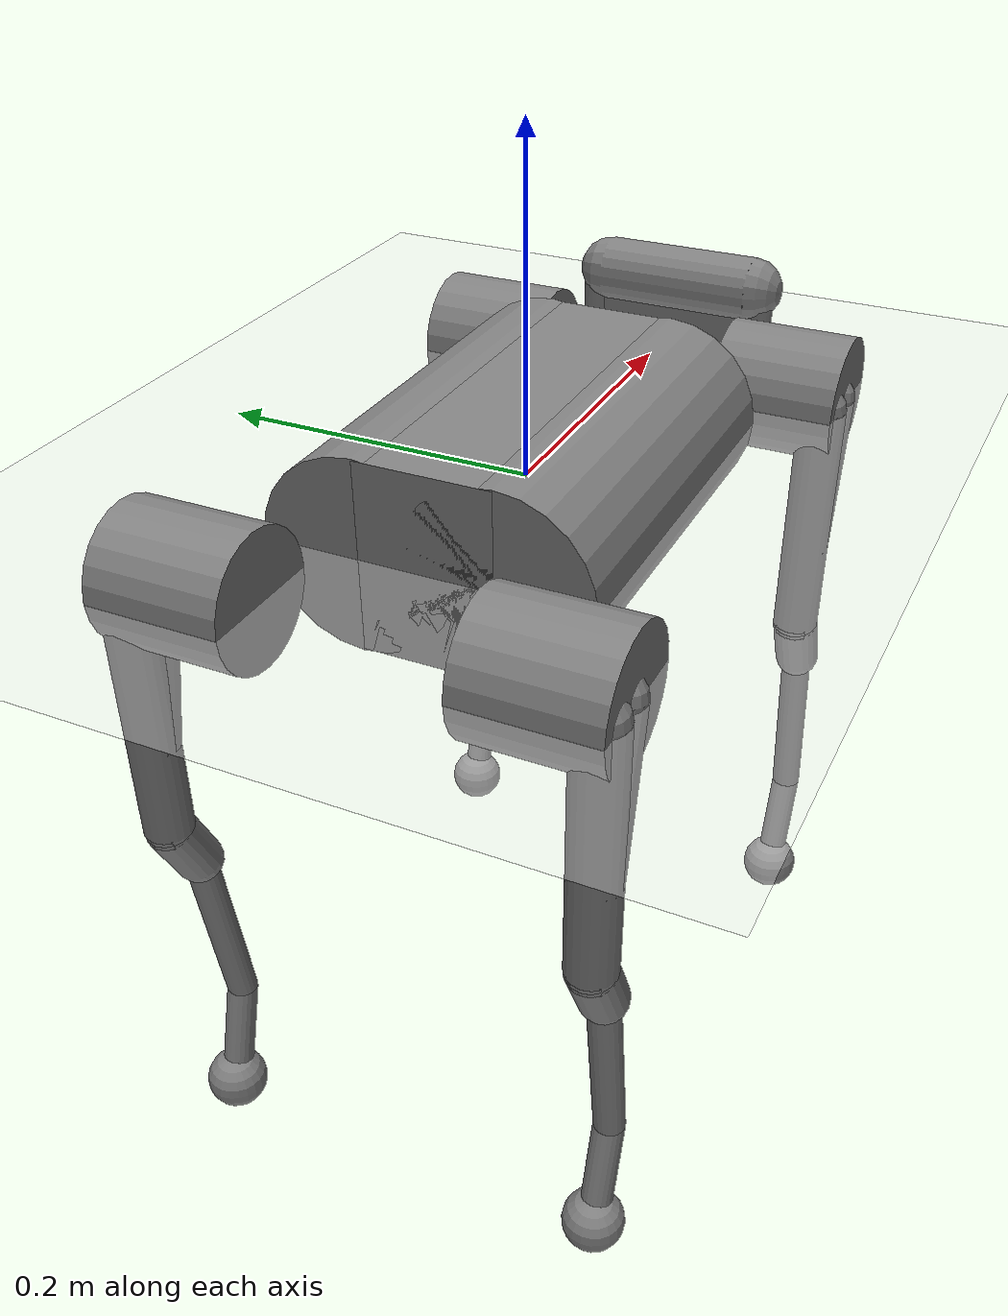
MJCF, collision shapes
<mujoco model="a1">
  <compiler angle="radian" meshdir="assets" texturedir="assets" autolimits="true"/>

  <option cone="pyramidal" impratio="100" timestep="0.005"/>

  <visual>
    <map force="0.1" zfar="30"/>
    <rgba haze="0.15 0.25 0.35 1"/>
    <global offwidth="2560" offheight="1440" elevation="-20" azimuth="120"/>
  </visual>

  <default>
    <geom solref="-1000 -80"/>
    <motor ctrllimited="true" ctrlrange="-33.5 33.5"/>
    <default class="a1">
      <geom friction="1.0" margin="0.001"/>
      <joint axis="0 1 0" armature="0.01" frictionloss="0.2"/>
      <default class="visual">
        <geom type="mesh" contype="0" conaffinity="0" group="2" material="dark"/>
      </default>
      <default class="collision">
        <geom group="3" type="capsule"/>
        <default class="hip_left">
          <geom size="0.04 0.04" quat="1 1 0 0" type="cylinder" pos="0 0.055 0"/>
        </default>
        <default class="hip_right">
          <geom size="0.04 0.04" quat="1 1 0 0" type="cylinder" pos="0 -0.055 0"/>
        </default>
        <default class="thigh1">
          <geom size="0.015" fromto="-0.02 0 0 -0.02 0 -0.16"/>
        </default>
        <default class="thigh2">
          <geom size="0.015" fromto="0 0 0 -0.02 0 -0.1"/>
        </default>
        <default class="thigh3">
          <geom size="0.015" fromto="-0.02 0 -0.16 0 0 -0.2"/>
        </default>
        <default class="calf1">
          <geom size="0.01" fromto="0 0 0 0.02 0 -0.13"/>
        </default>
        <default class="calf2">
          <geom size="0.01" fromto="0.02 0 -0.13 0 0 -0.2"/>
        </default>
        <default class="foot">
          <geom type="sphere" size="0.02" pos="0 0 -0.2" priority="1" solimp="0.015 1 0.031"
              condim="6" friction="1.0 0.02 0.01"/>
        </default>
      </default>
    </default>
  </default>

  <asset>
    <texture type="skybox" builtin="gradient" rgb1=".3 .5 .7" rgb2="0 0 0" width="32" height="512"/>

    <material name="dark" specular="0" shininess="0.25" rgba="0.2 0.2 0.2 1"/>
    <texture type="2d" name="trunk_A1" file="trunk_A1.png"/>
    <material name="carbonfibre" texture="trunk_A1" specular="0" shininess="0.25"/>

    <texture name="grid" type="2d" builtin="checker" rgb1="0.5 0.6 0.7" rgb2="0.2 0.3 0.4" width="512" height="512"/>
    <material name="grid" reflectance="0.5" texture="grid" texrepeat="1 1" texuniform="true"></material>

    <mesh class="a1" file="calf.obj"/>
    <mesh class="a1" file="hip.obj"/>
    <mesh class="a1" file="thigh.obj"/>
    <mesh class="a1" file="thigh_mirror.obj"/>
    <mesh class="a1" file="trunk.obj"/>
  </asset>

  <worldbody>
    <geom name="floor" size="0 0 .125" type="plane" material="grid" condim="3" rgba="0.9 0.9 0.9 1"/>

    <light cutoff="100" diffuse="1 1 1" dir="-0 0 -1.3" directional="true" exponent="1" pos="0 0 1.3" specular=".1 .1 .1" castshadow="false"/>
    <light name="spotlight" mode="targetbodycom" target="trunk" pos="0 0 15"/>
    <body name="trunk" pos="0 0 0" childclass="a1">
      <camera name="track" mode="trackcom" pos="0 -2 0" xyaxes="1 0 0 0 0 1"/>
      <freejoint/>

      <inertial mass="4.713" pos="0 0.0041 -0.0005"
          fullinertia="0.0158533 0.0377999 0.0456542 -3.66e-05 -6.11e-05 -2.75e-05"/>

      <geom class="visual" mesh="trunk" material="carbonfibre"/>
      <geom name="trunk_1" class="collision" size="0.125 0.04 0.057" type="box"/>
      <geom name="trunk_2" class="collision" quat="1 0 1 0" pos="0 -0.04 0" size="0.058 0.125" type="cylinder"/>
      <geom name="trunk_3" class="collision" quat="1 0 1 0" pos="0 +0.04 0" size="0.058 0.125" type="cylinder"/>
      <geom name="trunk_4" class="collision" pos="0.25 0 0" size="0.005 0.06 0.05" type="box"/>
      <geom name="trunk_5" class="collision" pos="0.25 0.06 -0.01" size="0.009 0.035"/>
      <geom name="trunk_6" class="collision" pos="0.25 -0.06 -0.01" size="0.009 0.035"/>
      <geom name="trunk_7" class="collision" pos="0.25 0 -0.05" size="0.005 0.06" quat="1 1 0 0"/>
      <geom name="trunk_8" class="collision" pos="0.255 0 0.0355" size="0.021 0.052" quat="1 1 0 0"/>
      <body name="FR_hip" pos="0.183 -0.047 0">
        <inertial mass="0.696" pos="-0.003311 -0.000635 3.1e-05"
            quat="0.507528 0.506268 0.491507 0.494499"
            diaginertia="0.000807752 0.00055293 0.000468983"/>
        <joint name="FR_hip_joint" axis="1 0 0" range="-0.802851 0.802851"/>
        <geom class="visual" mesh="hip" quat="0 1 0 0"/>
        <geom class="hip_right" name="FR_hip"/>
        <body name="FR_thigh" pos="0 -0.08505 0">
          <inertial mass="1.013" pos="-0.003237 0.022327 -0.027326"
              quat="0.999125 -0.00256393 -0.0409531 -0.00806091"
              diaginertia="0.00555739 0.00513936 0.00133944"/>
          <joint name="FR_thigh_joint" axis="0 -1 0" range="-4.18879 1.0472"/>
          <geom class="visual" mesh="thigh_mirror"/>
          <geom class="thigh1" name="FR_thigh1"/>
          <geom class="thigh2" name="FR_thigh2"/>
          <geom class="thigh3" name="FR_thigh3"/>
          <body name="FR_calf" pos="0 0 -0.2">
            <inertial mass="0.226" pos="0.00472659 0 -0.131975"
                quat="0.706886 0.017653 0.017653 0.706886"
                diaginertia="0.00340344 0.00339393 3.54834e-05"/>
            <joint name="FR_calf_joint" axis="0 -1 0" range="0.916298 2.69653"/>
            <geom class="visual" mesh="calf"/>
            <geom class="calf1" name="FR_calf1"/>
            <geom class="calf2" name="FR_calf2"/>
            <geom class="foot" name="FR_foot"/>
          </body>
        </body>
      </body>
      <body name="FL_hip" pos="0.183 0.047 0">
        <inertial mass="0.696" pos="-0.003311 0.000635 3.1e-05"
            quat="0.494499 0.491507 0.506268 0.507528"
            diaginertia="0.000807752 0.00055293 0.000468983"/>
        <joint name="FL_hip_joint" axis="1 0 0" range="-0.802851 0.802851"/>
        <geom class="visual" mesh="hip" quat="1 1 0 0"/>
        <geom class="hip_left" name="FL_hip"/>
        <body name="FL_thigh" pos="0 0.08505 0">
          <inertial mass="1.013" pos="-0.003237 -0.022327 -0.027326"
              quat="0.999125 0.00256393 -0.0409531 0.00806091"
              diaginertia="0.00555739 0.00513936 0.00133944"/>
          <joint name="FL_thigh_joint" axis="0 1 0" range="-1.0472 4.18879"/>
          <geom class="visual" mesh="thigh"/>
          <geom class="thigh1" name="FL_thigh1"/>
          <geom class="thigh2" name="FL_thigh2"/>
          <geom class="thigh3" name="FL_thigh3"/>
          <body name="FL_calf" pos="0 0 -0.2">
            <inertial mass="0.226" pos="0.00472659 0 -0.131975"
                quat="0.706886 0.017653 0.017653 0.706886"
                diaginertia="0.00340344 0.00339393 3.54834e-05"/>
            <joint name="FL_calf_joint" axis="0 1 0" range="-2.69653 -0.916298"/>
            <geom class="visual" mesh="calf"/>
            <geom class="calf1" name="FL_calf1"/>
            <geom class="calf2" name="FL_calf2"/>
            <geom class="foot"  name="FL_foot"/>
          </body>
        </body>
      </body>
      <body name="RR_hip" pos="-0.183 -0.047 0">
        <inertial mass="0.696" pos="0.003311 -0.000635 3.1e-05"
            quat="0.491507 0.494499 0.507528 0.506268"
            diaginertia="0.000807752 0.00055293 0.000468983"/>
        <joint name="RR_hip_joint" axis="-1 0 0" range="-0.802851 0.802851"/>
        <geom class="visual" quat="0 0 0 -1" mesh="hip"/>
        <geom class="hip_right" name="RR_hip"/>
        <body name="RR_thigh" pos="0 -0.08505 0">
          <inertial mass="1.013" pos="-0.003237 0.022327 -0.027326"
              quat="0.999125 -0.00256393 -0.0409531 -0.00806091"
              diaginertia="0.00555739 0.00513936 0.00133944"/>
          <joint name="RR_thigh_joint" axis="0 -1 0" range="-4.18879 1.0472"/>
          <geom class="visual" mesh="thigh_mirror"/>
          <geom class="thigh1" name="RR_thigh1"/>
          <geom class="thigh2" name="RR_thigh2"/>
          <geom class="thigh3" name="RR_thigh3"/>
          <body name="RR_calf" pos="0 0 -0.2">
            <inertial mass="0.226" pos="0.00472659 0 -0.131975"
                quat="0.706886 0.017653 0.017653 0.706886"
                diaginertia="0.00340344 0.00339393 3.54834e-05"/>
            <joint name="RR_calf_joint" axis="0 -1 0" range="0.916298 2.69653"/>
            <geom class="visual" mesh="calf"/>
            <geom class="calf1" name="RR_calf1"/>
            <geom class="calf2" name="RR_calf2"/>
            <geom class="foot" name="RR_foot"/>
          </body>
        </body>
      </body>
      <body name="RL_hip" pos="-0.183 0.047 0">
        <inertial mass="0.696" pos="0.003311 0.000635 3.1e-05"
            quat="0.506268 0.507528 0.494499 0.491507"
            diaginertia="0.000807752 0.00055293 0.000468983"/>
        <joint name="RL_hip_joint" axis="-1 0 0" range="-0.802851 0.802851"/>
        <geom class="visual" quat="0 0 1 0" mesh="hip"/>
        <geom class="hip_left" name="RL_hip"/>
        <body name="RL_thigh" pos="0 0.08505 0">
          <inertial mass="1.013" pos="-0.003237 -0.022327 -0.027326"
              quat="0.999125 0.00256393 -0.0409531 0.00806091"
              diaginertia="0.00555739 0.00513936 0.00133944"/>
          <joint name="RL_thigh_joint" axis="0 1 0" range="-1.0472 4.18879"/>
          <geom class="visual" mesh="thigh"/>
          <geom class="thigh1" name="RL_thigh1"/>
          <geom class="thigh2" name="RL_thigh2"/>
          <geom class="thigh3" name="RL_thigh3"/>
          <body name="RL_calf" pos="0 0 -0.2">
            <inertial mass="0.226" pos="0.00472659 0 -0.131975"
                quat="0.706886 0.017653 0.017653 0.706886"
                diaginertia="0.00340344 0.00339393 3.54834e-05"/>
            <joint name="RL_calf_joint" axis="0 1 0" range="-2.69653 -0.916298"/>
            <geom class="visual" mesh="calf"/>
            <geom class="calf1" name="RL_calf1"/>
            <geom class="calf2" name="RL_calf2"/>
            <geom class="foot" name="RL_foot"/>
          </body>
        </body>
      </body>
    </body>
  </worldbody>

  <actuator>
    <motor name="FR_hip" joint="FR_hip_joint"></motor>
    <motor name="FR_thigh" joint="FR_thigh_joint"></motor>
    <motor name="FR_calf" joint="FR_calf_joint"></motor>
    <motor name="FL_hip" joint="FL_hip_joint"></motor>
    <motor name="FL_thigh" joint="FL_thigh_joint"></motor>
    <motor name="FL_calf" joint="FL_calf_joint"></motor>
    <motor name="RR_hip" joint="RR_hip_joint"></motor>
    <motor name="RR_thigh" joint="RR_thigh_joint"></motor>
    <motor name="RR_calf" joint="RR_calf_joint"></motor>
    <motor name="RL_hip" joint="RL_hip_joint"></motor>
    <motor name="RL_thigh" joint="RL_thigh_joint"></motor>
    <motor name="RL_calf" joint="RL_calf_joint"></motor>
  </actuator>

  <keyframe>
    <key name="home" qpos="0 0 0.303 1 0 0 0 -0.1 -0.8 1.5 0.1 0.8 -1.5 0.1 -1.0 1.5 -0.1 1.0 -1.5"/>
  </keyframe>
</mujoco>
